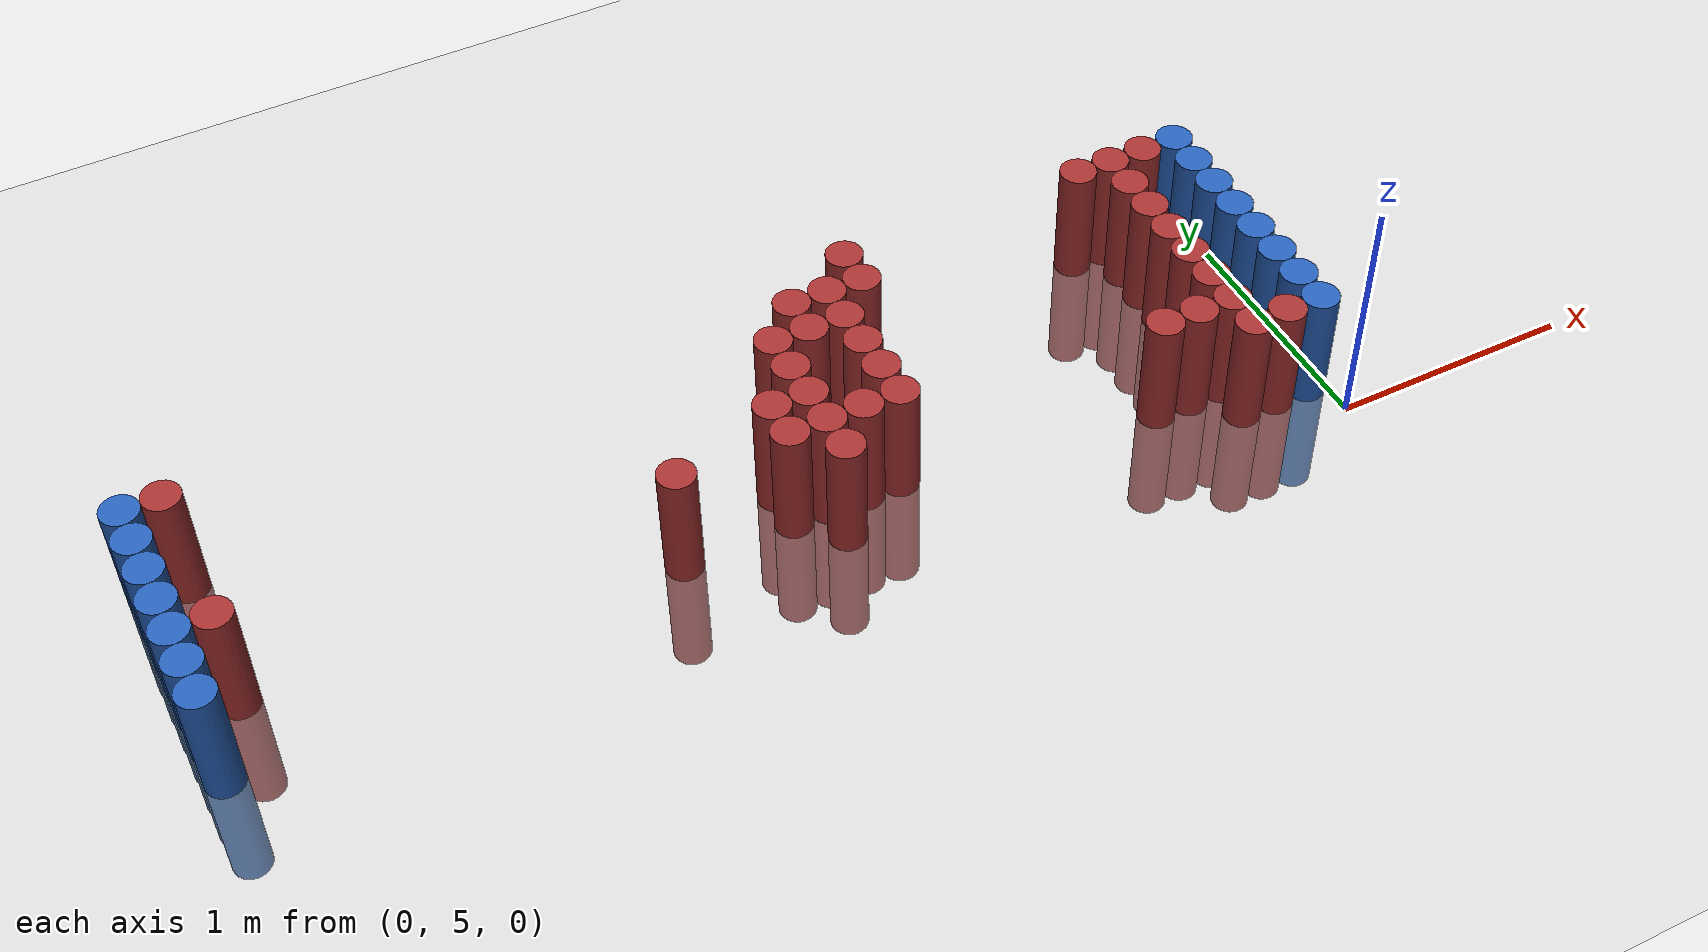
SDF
<sdf version="1.6">
 <world name="default">
  <model name="ground_plane">
   <static>1</static>
   <link name="link">
    <collision name="collision">
     <geometry><plane><normal>0 0 1</normal><size>100 100</size></plane></geometry>
     <surface><friction><ode><mu>100</mu><mu2>50</mu2></ode></friction></surface>
    </collision>
    <visual name="visual">
     <cast_shadows>0</cast_shadows>
     <geometry><plane><normal>0 0 1</normal><size>100 100</size></plane></geometry>
     <material>
      <script><uri>file://media/materials/scripts/gazebo.material</uri><name>Gazebo/Grey</name></script>
     </material>
    </visual>
   </link>
  </model>
  <model name="unit_cylinder_97">
   <static>1</static>
   <pose>-4.425000 5.325000 0.000000 0.000000 0.000000 0.000000</pose>
   <link name="link">
    <inertial>
     <mass>1</mass>
     <inertia><ixx>0.145833</ixx><ixy>0</ixy><ixz>0</ixz><iyy>0.145833</iyy><iyz>0</iyz><izz>0.125</izz></inertia>
    </inertial>
    <collision name="collision">
     <geometry><cylinder><radius>0.075000</radius><length>1</length></cylinder></geometry>
    </collision>
    <visual name="visual">
     <geometry><cylinder><radius>0.075000</radius><length>1</length></cylinder></geometry>
     <material>
      <ambient>0.152000 0.379000 0.720000 1</ambient>
      <diffuse>0.152000 0.379000 0.720000 1</diffuse>
     </material>
     <material>
      <script><name>Gazebo/Grey</name><uri>file://media/materials/scripts/gazebo.material</uri></script>
     </material>
    </visual>
   </link>
  </model>
  <model name="unit_cylinder_98">
   <static>1</static>
   <pose>-4.425000 5.475000 0.000000 0.000000 0.000000 0.000000</pose>
   <link name="link">
    <inertial>
     <mass>1</mass>
     <inertia><ixx>0.145833</ixx><ixy>0</ixy><ixz>0</ixz><iyy>0.145833</iyy><iyz>0</iyz><izz>0.125</izz></inertia>
    </inertial>
    <collision name="collision">
     <geometry><cylinder><radius>0.075000</radius><length>1</length></cylinder></geometry>
    </collision>
    <visual name="visual">
     <geometry><cylinder><radius>0.075000</radius><length>1</length></cylinder></geometry>
     <material>
      <ambient>0.152000 0.379000 0.720000 1</ambient>
      <diffuse>0.152000 0.379000 0.720000 1</diffuse>
     </material>
     <material>
      <script><name>Gazebo/Grey</name><uri>file://media/materials/scripts/gazebo.material</uri></script>
     </material>
    </visual>
   </link>
  </model>
  <model name="unit_cylinder_99">
   <static>1</static>
   <pose>-4.425000 5.625000 0.000000 0.000000 0.000000 0.000000</pose>
   <link name="link">
    <inertial>
     <mass>1</mass>
     <inertia><ixx>0.145833</ixx><ixy>0</ixy><ixz>0</ixz><iyy>0.145833</iyy><iyz>0</iyz><izz>0.125</izz></inertia>
    </inertial>
    <collision name="collision">
     <geometry><cylinder><radius>0.075000</radius><length>1</length></cylinder></geometry>
    </collision>
    <visual name="visual">
     <geometry><cylinder><radius>0.075000</radius><length>1</length></cylinder></geometry>
     <material>
      <ambient>0.152000 0.379000 0.720000 1</ambient>
      <diffuse>0.152000 0.379000 0.720000 1</diffuse>
     </material>
     <material>
      <script><name>Gazebo/Grey</name><uri>file://media/materials/scripts/gazebo.material</uri></script>
     </material>
    </visual>
   </link>
  </model>
  <model name="unit_cylinder_100">
   <static>1</static>
   <pose>-4.425000 5.775000 0.000000 0.000000 0.000000 0.000000</pose>
   <link name="link">
    <inertial>
     <mass>1</mass>
     <inertia><ixx>0.145833</ixx><ixy>0</ixy><ixz>0</ixz><iyy>0.145833</iyy><iyz>0</iyz><izz>0.125</izz></inertia>
    </inertial>
    <collision name="collision">
     <geometry><cylinder><radius>0.075000</radius><length>1</length></cylinder></geometry>
    </collision>
    <visual name="visual">
     <geometry><cylinder><radius>0.075000</radius><length>1</length></cylinder></geometry>
     <material>
      <ambient>0.152000 0.379000 0.720000 1</ambient>
      <diffuse>0.152000 0.379000 0.720000 1</diffuse>
     </material>
     <material>
      <script><name>Gazebo/Grey</name><uri>file://media/materials/scripts/gazebo.material</uri></script>
     </material>
    </visual>
   </link>
  </model>
  <model name="unit_cylinder_101">
   <static>1</static>
   <pose>-4.425000 5.925000 0.000000 0.000000 0.000000 0.000000</pose>
   <link name="link">
    <inertial>
     <mass>1</mass>
     <inertia><ixx>0.145833</ixx><ixy>0</ixy><ixz>0</ixz><iyy>0.145833</iyy><iyz>0</iyz><izz>0.125</izz></inertia>
    </inertial>
    <collision name="collision">
     <geometry><cylinder><radius>0.075000</radius><length>1</length></cylinder></geometry>
    </collision>
    <visual name="visual">
     <geometry><cylinder><radius>0.075000</radius><length>1</length></cylinder></geometry>
     <material>
      <ambient>0.152000 0.379000 0.720000 1</ambient>
      <diffuse>0.152000 0.379000 0.720000 1</diffuse>
     </material>
     <material>
      <script><name>Gazebo/Grey</name><uri>file://media/materials/scripts/gazebo.material</uri></script>
     </material>
    </visual>
   </link>
  </model>
  <model name="unit_cylinder_102">
   <static>1</static>
   <pose>-4.425000 6.075000 0.000000 0.000000 0.000000 0.000000</pose>
   <link name="link">
    <inertial>
     <mass>1</mass>
     <inertia><ixx>0.145833</ixx><ixy>0</ixy><ixz>0</ixz><iyy>0.145833</iyy><iyz>0</iyz><izz>0.125</izz></inertia>
    </inertial>
    <collision name="collision">
     <geometry><cylinder><radius>0.075000</radius><length>1</length></cylinder></geometry>
    </collision>
    <visual name="visual">
     <geometry><cylinder><radius>0.075000</radius><length>1</length></cylinder></geometry>
     <material>
      <ambient>0.152000 0.379000 0.720000 1</ambient>
      <diffuse>0.152000 0.379000 0.720000 1</diffuse>
     </material>
     <material>
      <script><name>Gazebo/Grey</name><uri>file://media/materials/scripts/gazebo.material</uri></script>
     </material>
    </visual>
   </link>
  </model>
  <model name="unit_cylinder_103">
   <static>1</static>
   <pose>-4.425000 6.225000 0.000000 0.000000 0.000000 0.000000</pose>
   <link name="link">
    <inertial>
     <mass>1</mass>
     <inertia><ixx>0.145833</ixx><ixy>0</ixy><ixz>0</ixz><iyy>0.145833</iyy><iyz>0</iyz><izz>0.125</izz></inertia>
    </inertial>
    <collision name="collision">
     <geometry><cylinder><radius>0.075000</radius><length>1</length></cylinder></geometry>
    </collision>
    <visual name="visual">
     <geometry><cylinder><radius>0.075000</radius><length>1</length></cylinder></geometry>
     <material>
      <ambient>0.152000 0.379000 0.720000 1</ambient>
      <diffuse>0.152000 0.379000 0.720000 1</diffuse>
     </material>
     <material>
      <script><name>Gazebo/Grey</name><uri>file://media/materials/scripts/gazebo.material</uri></script>
     </material>
    </visual>
   </link>
  </model>
  <model name="unit_cylinder_126">
   <static>1</static>
   <pose>-4.275000 5.625000 0.000000 0.000000 0.000000 0.000000</pose>
   <link name="link">
    <inertial>
     <mass>1</mass>
     <inertia><ixx>0.145833</ixx><ixy>0</ixy><ixz>0</ixz><iyy>0.145833</iyy><iyz>0</iyz><izz>0.125</izz></inertia>
    </inertial>
    <collision name="collision">
     <geometry><cylinder><radius>0.075000</radius><length>1</length></cylinder></geometry>
    </collision>
    <visual name="visual">
     <geometry><cylinder><radius>0.075000</radius><length>1</length></cylinder></geometry>
     <material>
      <ambient>0.648000 0.192000 0.192000 1</ambient>
      <diffuse>0.648000 0.192000 0.192000 1</diffuse>
     </material>
     <material>
      <script><name>Gazebo/Grey</name><uri>file://media/materials/scripts/gazebo.material</uri></script>
     </material>
    </visual>
   </link>
  </model>
  <model name="unit_cylinder_127">
   <static>1</static>
   <pose>-4.275000 6.225000 0.000000 0.000000 0.000000 0.000000</pose>
   <link name="link">
    <inertial>
     <mass>1</mass>
     <inertia><ixx>0.145833</ixx><ixy>0</ixy><ixz>0</ixz><iyy>0.145833</iyy><iyz>0</iyz><izz>0.125</izz></inertia>
    </inertial>
    <collision name="collision">
     <geometry><cylinder><radius>0.075000</radius><length>1</length></cylinder></geometry>
    </collision>
    <visual name="visual">
     <geometry><cylinder><radius>0.075000</radius><length>1</length></cylinder></geometry>
     <material>
      <ambient>0.648000 0.192000 0.192000 1</ambient>
      <diffuse>0.648000 0.192000 0.192000 1</diffuse>
     </material>
     <material>
      <script><name>Gazebo/Grey</name><uri>file://media/materials/scripts/gazebo.material</uri></script>
     </material>
    </visual>
   </link>
  </model>
  <model name="unit_cylinder_151">
   <static>1</static>
   <pose>-2.625000 5.475000 0.000000 0.000000 0.000000 0.000000</pose>
   <link name="link">
    <inertial>
     <mass>1</mass>
     <inertia><ixx>0.145833</ixx><ixy>0</ixy><ixz>0</ixz><iyy>0.145833</iyy><iyz>0</iyz><izz>0.125</izz></inertia>
    </inertial>
    <collision name="collision">
     <geometry><cylinder><radius>0.075000</radius><length>1</length></cylinder></geometry>
    </collision>
    <visual name="visual">
     <geometry><cylinder><radius>0.075000</radius><length>1</length></cylinder></geometry>
     <material>
      <ambient>0.648000 0.192000 0.192000 1</ambient>
      <diffuse>0.648000 0.192000 0.192000 1</diffuse>
     </material>
     <material>
      <script><name>Gazebo/Grey</name><uri>file://media/materials/scripts/gazebo.material</uri></script>
     </material>
    </visual>
   </link>
  </model>
  <model name="unit_cylinder_166">
   <static>1</static>
   <pose>-2.175000 5.475000 0.000000 0.000000 0.000000 0.000000</pose>
   <link name="link">
    <inertial>
     <mass>1</mass>
     <inertia><ixx>0.145833</ixx><ixy>0</ixy><ixz>0</ixz><iyy>0.145833</iyy><iyz>0</iyz><izz>0.125</izz></inertia>
    </inertial>
    <collision name="collision">
     <geometry><cylinder><radius>0.075000</radius><length>1</length></cylinder></geometry>
    </collision>
    <visual name="visual">
     <geometry><cylinder><radius>0.075000</radius><length>1</length></cylinder></geometry>
     <material>
      <ambient>0.648000 0.192000 0.192000 1</ambient>
      <diffuse>0.648000 0.192000 0.192000 1</diffuse>
     </material>
     <material>
      <script><name>Gazebo/Grey</name><uri>file://media/materials/scripts/gazebo.material</uri></script>
     </material>
    </visual>
   </link>
  </model>
  <model name="unit_cylinder_167">
   <static>1</static>
   <pose>-2.175000 5.625000 0.000000 0.000000 0.000000 0.000000</pose>
   <link name="link">
    <inertial>
     <mass>1</mass>
     <inertia><ixx>0.145833</ixx><ixy>0</ixy><ixz>0</ixz><iyy>0.145833</iyy><iyz>0</iyz><izz>0.125</izz></inertia>
    </inertial>
    <collision name="collision">
     <geometry><cylinder><radius>0.075000</radius><length>1</length></cylinder></geometry>
    </collision>
    <visual name="visual">
     <geometry><cylinder><radius>0.075000</radius><length>1</length></cylinder></geometry>
     <material>
      <ambient>0.648000 0.192000 0.192000 1</ambient>
      <diffuse>0.648000 0.192000 0.192000 1</diffuse>
     </material>
     <material>
      <script><name>Gazebo/Grey</name><uri>file://media/materials/scripts/gazebo.material</uri></script>
     </material>
    </visual>
   </link>
  </model>
  <model name="unit_cylinder_171">
   <static>1</static>
   <pose>-2.025000 5.325000 0.000000 0.000000 0.000000 0.000000</pose>
   <link name="link">
    <inertial>
     <mass>1</mass>
     <inertia><ixx>0.145833</ixx><ixy>0</ixy><ixz>0</ixz><iyy>0.145833</iyy><iyz>0</iyz><izz>0.125</izz></inertia>
    </inertial>
    <collision name="collision">
     <geometry><cylinder><radius>0.075000</radius><length>1</length></cylinder></geometry>
    </collision>
    <visual name="visual">
     <geometry><cylinder><radius>0.075000</radius><length>1</length></cylinder></geometry>
     <material>
      <ambient>0.648000 0.192000 0.192000 1</ambient>
      <diffuse>0.648000 0.192000 0.192000 1</diffuse>
     </material>
     <material>
      <script><name>Gazebo/Grey</name><uri>file://media/materials/scripts/gazebo.material</uri></script>
     </material>
    </visual>
   </link>
  </model>
  <model name="unit_cylinder_172">
   <static>1</static>
   <pose>-2.025000 5.475000 0.000000 0.000000 0.000000 0.000000</pose>
   <link name="link">
    <inertial>
     <mass>1</mass>
     <inertia><ixx>0.145833</ixx><ixy>0</ixy><ixz>0</ixz><iyy>0.145833</iyy><iyz>0</iyz><izz>0.125</izz></inertia>
    </inertial>
    <collision name="collision">
     <geometry><cylinder><radius>0.075000</radius><length>1</length></cylinder></geometry>
    </collision>
    <visual name="visual">
     <geometry><cylinder><radius>0.075000</radius><length>1</length></cylinder></geometry>
     <material>
      <ambient>0.648000 0.192000 0.192000 1</ambient>
      <diffuse>0.648000 0.192000 0.192000 1</diffuse>
     </material>
     <material>
      <script><name>Gazebo/Grey</name><uri>file://media/materials/scripts/gazebo.material</uri></script>
     </material>
    </visual>
   </link>
  </model>
  <model name="unit_cylinder_173">
   <static>1</static>
   <pose>-2.025000 5.625000 0.000000 0.000000 0.000000 0.000000</pose>
   <link name="link">
    <inertial>
     <mass>1</mass>
     <inertia><ixx>0.145833</ixx><ixy>0</ixy><ixz>0</ixz><iyy>0.145833</iyy><iyz>0</iyz><izz>0.125</izz></inertia>
    </inertial>
    <collision name="collision">
     <geometry><cylinder><radius>0.075000</radius><length>1</length></cylinder></geometry>
    </collision>
    <visual name="visual">
     <geometry><cylinder><radius>0.075000</radius><length>1</length></cylinder></geometry>
     <material>
      <ambient>0.648000 0.192000 0.192000 1</ambient>
      <diffuse>0.648000 0.192000 0.192000 1</diffuse>
     </material>
     <material>
      <script><name>Gazebo/Grey</name><uri>file://media/materials/scripts/gazebo.material</uri></script>
     </material>
    </visual>
   </link>
  </model>
  <model name="unit_cylinder_174">
   <static>1</static>
   <pose>-2.025000 5.775000 0.000000 0.000000 0.000000 0.000000</pose>
   <link name="link">
    <inertial>
     <mass>1</mass>
     <inertia><ixx>0.145833</ixx><ixy>0</ixy><ixz>0</ixz><iyy>0.145833</iyy><iyz>0</iyz><izz>0.125</izz></inertia>
    </inertial>
    <collision name="collision">
     <geometry><cylinder><radius>0.075000</radius><length>1</length></cylinder></geometry>
    </collision>
    <visual name="visual">
     <geometry><cylinder><radius>0.075000</radius><length>1</length></cylinder></geometry>
     <material>
      <ambient>0.648000 0.192000 0.192000 1</ambient>
      <diffuse>0.648000 0.192000 0.192000 1</diffuse>
     </material>
     <material>
      <script><name>Gazebo/Grey</name><uri>file://media/materials/scripts/gazebo.material</uri></script>
     </material>
    </visual>
   </link>
  </model>
  <model name="unit_cylinder_175">
   <static>1</static>
   <pose>-2.025000 5.925000 0.000000 0.000000 0.000000 0.000000</pose>
   <link name="link">
    <inertial>
     <mass>1</mass>
     <inertia><ixx>0.145833</ixx><ixy>0</ixy><ixz>0</ixz><iyy>0.145833</iyy><iyz>0</iyz><izz>0.125</izz></inertia>
    </inertial>
    <collision name="collision">
     <geometry><cylinder><radius>0.075000</radius><length>1</length></cylinder></geometry>
    </collision>
    <visual name="visual">
     <geometry><cylinder><radius>0.075000</radius><length>1</length></cylinder></geometry>
     <material>
      <ambient>0.648000 0.192000 0.192000 1</ambient>
      <diffuse>0.648000 0.192000 0.192000 1</diffuse>
     </material>
     <material>
      <script><name>Gazebo/Grey</name><uri>file://media/materials/scripts/gazebo.material</uri></script>
     </material>
    </visual>
   </link>
  </model>
  <model name="unit_cylinder_178">
   <static>1</static>
   <pose>-1.875000 5.475000 0.000000 0.000000 0.000000 0.000000</pose>
   <link name="link">
    <inertial>
     <mass>1</mass>
     <inertia><ixx>0.145833</ixx><ixy>0</ixy><ixz>0</ixz><iyy>0.145833</iyy><iyz>0</iyz><izz>0.125</izz></inertia>
    </inertial>
    <collision name="collision">
     <geometry><cylinder><radius>0.075000</radius><length>1</length></cylinder></geometry>
    </collision>
    <visual name="visual">
     <geometry><cylinder><radius>0.075000</radius><length>1</length></cylinder></geometry>
     <material>
      <ambient>0.648000 0.192000 0.192000 1</ambient>
      <diffuse>0.648000 0.192000 0.192000 1</diffuse>
     </material>
     <material>
      <script><name>Gazebo/Grey</name><uri>file://media/materials/scripts/gazebo.material</uri></script>
     </material>
    </visual>
   </link>
  </model>
  <model name="unit_cylinder_179">
   <static>1</static>
   <pose>-1.875000 5.925000 0.000000 0.000000 0.000000 0.000000</pose>
   <link name="link">
    <inertial>
     <mass>1</mass>
     <inertia><ixx>0.145833</ixx><ixy>0</ixy><ixz>0</ixz><iyy>0.145833</iyy><iyz>0</iyz><izz>0.125</izz></inertia>
    </inertial>
    <collision name="collision">
     <geometry><cylinder><radius>0.075000</radius><length>1</length></cylinder></geometry>
    </collision>
    <visual name="visual">
     <geometry><cylinder><radius>0.075000</radius><length>1</length></cylinder></geometry>
     <material>
      <ambient>0.648000 0.192000 0.192000 1</ambient>
      <diffuse>0.648000 0.192000 0.192000 1</diffuse>
     </material>
     <material>
      <script><name>Gazebo/Grey</name><uri>file://media/materials/scripts/gazebo.material</uri></script>
     </material>
    </visual>
   </link>
  </model>
  <model name="unit_cylinder_180">
   <static>1</static>
   <pose>-1.875000 6.075000 0.000000 0.000000 0.000000 0.000000</pose>
   <link name="link">
    <inertial>
     <mass>1</mass>
     <inertia><ixx>0.145833</ixx><ixy>0</ixy><ixz>0</ixz><iyy>0.145833</iyy><iyz>0</iyz><izz>0.125</izz></inertia>
    </inertial>
    <collision name="collision">
     <geometry><cylinder><radius>0.075000</radius><length>1</length></cylinder></geometry>
    </collision>
    <visual name="visual">
     <geometry><cylinder><radius>0.075000</radius><length>1</length></cylinder></geometry>
     <material>
      <ambient>0.648000 0.192000 0.192000 1</ambient>
      <diffuse>0.648000 0.192000 0.192000 1</diffuse>
     </material>
     <material>
      <script><name>Gazebo/Grey</name><uri>file://media/materials/scripts/gazebo.material</uri></script>
     </material>
    </visual>
   </link>
  </model>
  <model name="unit_cylinder_184">
   <static>1</static>
   <pose>-1.725000 5.475000 0.000000 0.000000 0.000000 0.000000</pose>
   <link name="link">
    <inertial>
     <mass>1</mass>
     <inertia><ixx>0.145833</ixx><ixy>0</ixy><ixz>0</ixz><iyy>0.145833</iyy><iyz>0</iyz><izz>0.125</izz></inertia>
    </inertial>
    <collision name="collision">
     <geometry><cylinder><radius>0.075000</radius><length>1</length></cylinder></geometry>
    </collision>
    <visual name="visual">
     <geometry><cylinder><radius>0.075000</radius><length>1</length></cylinder></geometry>
     <material>
      <ambient>0.648000 0.192000 0.192000 1</ambient>
      <diffuse>0.648000 0.192000 0.192000 1</diffuse>
     </material>
     <material>
      <script><name>Gazebo/Grey</name><uri>file://media/materials/scripts/gazebo.material</uri></script>
     </material>
    </visual>
   </link>
  </model>
  <model name="unit_cylinder_185">
   <static>1</static>
   <pose>-1.725000 5.625000 0.000000 0.000000 0.000000 0.000000</pose>
   <link name="link">
    <inertial>
     <mass>1</mass>
     <inertia><ixx>0.145833</ixx><ixy>0</ixy><ixz>0</ixz><iyy>0.145833</iyy><iyz>0</iyz><izz>0.125</izz></inertia>
    </inertial>
    <collision name="collision">
     <geometry><cylinder><radius>0.075000</radius><length>1</length></cylinder></geometry>
    </collision>
    <visual name="visual">
     <geometry><cylinder><radius>0.075000</radius><length>1</length></cylinder></geometry>
     <material>
      <ambient>0.648000 0.192000 0.192000 1</ambient>
      <diffuse>0.648000 0.192000 0.192000 1</diffuse>
     </material>
     <material>
      <script><name>Gazebo/Grey</name><uri>file://media/materials/scripts/gazebo.material</uri></script>
     </material>
    </visual>
   </link>
  </model>
  <model name="unit_cylinder_186">
   <static>1</static>
   <pose>-1.725000 5.775000 0.000000 0.000000 0.000000 0.000000</pose>
   <link name="link">
    <inertial>
     <mass>1</mass>
     <inertia><ixx>0.145833</ixx><ixy>0</ixy><ixz>0</ixz><iyy>0.145833</iyy><iyz>0</iyz><izz>0.125</izz></inertia>
    </inertial>
    <collision name="collision">
     <geometry><cylinder><radius>0.075000</radius><length>1</length></cylinder></geometry>
    </collision>
    <visual name="visual">
     <geometry><cylinder><radius>0.075000</radius><length>1</length></cylinder></geometry>
     <material>
      <ambient>0.648000 0.192000 0.192000 1</ambient>
      <diffuse>0.648000 0.192000 0.192000 1</diffuse>
     </material>
     <material>
      <script><name>Gazebo/Grey</name><uri>file://media/materials/scripts/gazebo.material</uri></script>
     </material>
    </visual>
   </link>
  </model>
  <model name="unit_cylinder_187">
   <static>1</static>
   <pose>-1.725000 5.925000 0.000000 0.000000 0.000000 0.000000</pose>
   <link name="link">
    <inertial>
     <mass>1</mass>
     <inertia><ixx>0.145833</ixx><ixy>0</ixy><ixz>0</ixz><iyy>0.145833</iyy><iyz>0</iyz><izz>0.125</izz></inertia>
    </inertial>
    <collision name="collision">
     <geometry><cylinder><radius>0.075000</radius><length>1</length></cylinder></geometry>
    </collision>
    <visual name="visual">
     <geometry><cylinder><radius>0.075000</radius><length>1</length></cylinder></geometry>
     <material>
      <ambient>0.648000 0.192000 0.192000 1</ambient>
      <diffuse>0.648000 0.192000 0.192000 1</diffuse>
     </material>
     <material>
      <script><name>Gazebo/Grey</name><uri>file://media/materials/scripts/gazebo.material</uri></script>
     </material>
    </visual>
   </link>
  </model>
  <model name="unit_cylinder_188">
   <static>1</static>
   <pose>-1.725000 6.075000 0.000000 0.000000 0.000000 0.000000</pose>
   <link name="link">
    <inertial>
     <mass>1</mass>
     <inertia><ixx>0.145833</ixx><ixy>0</ixy><ixz>0</ixz><iyy>0.145833</iyy><iyz>0</iyz><izz>0.125</izz></inertia>
    </inertial>
    <collision name="collision">
     <geometry><cylinder><radius>0.075000</radius><length>1</length></cylinder></geometry>
    </collision>
    <visual name="visual">
     <geometry><cylinder><radius>0.075000</radius><length>1</length></cylinder></geometry>
     <material>
      <ambient>0.648000 0.192000 0.192000 1</ambient>
      <diffuse>0.648000 0.192000 0.192000 1</diffuse>
     </material>
     <material>
      <script><name>Gazebo/Grey</name><uri>file://media/materials/scripts/gazebo.material</uri></script>
     </material>
    </visual>
   </link>
  </model>
  <model name="unit_cylinder_191">
   <static>1</static>
   <pose>-1.575000 6.075000 0.000000 0.000000 0.000000 0.000000</pose>
   <link name="link">
    <inertial>
     <mass>1</mass>
     <inertia><ixx>0.145833</ixx><ixy>0</ixy><ixz>0</ixz><iyy>0.145833</iyy><iyz>0</iyz><izz>0.125</izz></inertia>
    </inertial>
    <collision name="collision">
     <geometry><cylinder><radius>0.075000</radius><length>1</length></cylinder></geometry>
    </collision>
    <visual name="visual">
     <geometry><cylinder><radius>0.075000</radius><length>1</length></cylinder></geometry>
     <material>
      <ambient>0.648000 0.192000 0.192000 1</ambient>
      <diffuse>0.648000 0.192000 0.192000 1</diffuse>
     </material>
     <material>
      <script><name>Gazebo/Grey</name><uri>file://media/materials/scripts/gazebo.material</uri></script>
     </material>
    </visual>
   </link>
  </model>
  <model name="unit_cylinder_192">
   <static>1</static>
   <pose>-1.575000 6.225000 0.000000 0.000000 0.000000 0.000000</pose>
   <link name="link">
    <inertial>
     <mass>1</mass>
     <inertia><ixx>0.145833</ixx><ixy>0</ixy><ixz>0</ixz><iyy>0.145833</iyy><iyz>0</iyz><izz>0.125</izz></inertia>
    </inertial>
    <collision name="collision">
     <geometry><cylinder><radius>0.075000</radius><length>1</length></cylinder></geometry>
    </collision>
    <visual name="visual">
     <geometry><cylinder><radius>0.075000</radius><length>1</length></cylinder></geometry>
     <material>
      <ambient>0.648000 0.192000 0.192000 1</ambient>
      <diffuse>0.648000 0.192000 0.192000 1</diffuse>
     </material>
     <material>
      <script><name>Gazebo/Grey</name><uri>file://media/materials/scripts/gazebo.material</uri></script>
     </material>
    </visual>
   </link>
  </model>
  <model name="unit_cylinder_223">
   <static>1</static>
   <pose>-0.675000 5.325000 0.000000 0.000000 0.000000 0.000000</pose>
   <link name="link">
    <inertial>
     <mass>1</mass>
     <inertia><ixx>0.145833</ixx><ixy>0</ixy><ixz>0</ixz><iyy>0.145833</iyy><iyz>0</iyz><izz>0.125</izz></inertia>
    </inertial>
    <collision name="collision">
     <geometry><cylinder><radius>0.075000</radius><length>1</length></cylinder></geometry>
    </collision>
    <visual name="visual">
     <geometry><cylinder><radius>0.075000</radius><length>1</length></cylinder></geometry>
     <material>
      <ambient>0.648000 0.192000 0.192000 1</ambient>
      <diffuse>0.648000 0.192000 0.192000 1</diffuse>
     </material>
     <material>
      <script><name>Gazebo/Grey</name><uri>file://media/materials/scripts/gazebo.material</uri></script>
     </material>
    </visual>
   </link>
  </model>
  <model name="unit_cylinder_231">
   <static>1</static>
   <pose>-0.525000 5.325000 0.000000 0.000000 0.000000 0.000000</pose>
   <link name="link">
    <inertial>
     <mass>1</mass>
     <inertia><ixx>0.145833</ixx><ixy>0</ixy><ixz>0</ixz><iyy>0.145833</iyy><iyz>0</iyz><izz>0.125</izz></inertia>
    </inertial>
    <collision name="collision">
     <geometry><cylinder><radius>0.075000</radius><length>1</length></cylinder></geometry>
    </collision>
    <visual name="visual">
     <geometry><cylinder><radius>0.075000</radius><length>1</length></cylinder></geometry>
     <material>
      <ambient>0.648000 0.192000 0.192000 1</ambient>
      <diffuse>0.648000 0.192000 0.192000 1</diffuse>
     </material>
     <material>
      <script><name>Gazebo/Grey</name><uri>file://media/materials/scripts/gazebo.material</uri></script>
     </material>
    </visual>
   </link>
  </model>
  <model name="unit_cylinder_232">
   <static>1</static>
   <pose>-0.525000 6.225000 0.000000 0.000000 0.000000 0.000000</pose>
   <link name="link">
    <inertial>
     <mass>1</mass>
     <inertia><ixx>0.145833</ixx><ixy>0</ixy><ixz>0</ixz><iyy>0.145833</iyy><iyz>0</iyz><izz>0.125</izz></inertia>
    </inertial>
    <collision name="collision">
     <geometry><cylinder><radius>0.075000</radius><length>1</length></cylinder></geometry>
    </collision>
    <visual name="visual">
     <geometry><cylinder><radius>0.075000</radius><length>1</length></cylinder></geometry>
     <material>
      <ambient>0.648000 0.192000 0.192000 1</ambient>
      <diffuse>0.648000 0.192000 0.192000 1</diffuse>
     </material>
     <material>
      <script><name>Gazebo/Grey</name><uri>file://media/materials/scripts/gazebo.material</uri></script>
     </material>
    </visual>
   </link>
  </model>
  <model name="unit_cylinder_237">
   <static>1</static>
   <pose>-0.375000 5.175000 0.000000 0.000000 0.000000 0.000000</pose>
   <link name="link">
    <inertial>
     <mass>1</mass>
     <inertia><ixx>0.145833</ixx><ixy>0</ixy><ixz>0</ixz><iyy>0.145833</iyy><iyz>0</iyz><izz>0.125</izz></inertia>
    </inertial>
    <collision name="collision">
     <geometry><cylinder><radius>0.075000</radius><length>1</length></cylinder></geometry>
    </collision>
    <visual name="visual">
     <geometry><cylinder><radius>0.075000</radius><length>1</length></cylinder></geometry>
     <material>
      <ambient>0.648000 0.192000 0.192000 1</ambient>
      <diffuse>0.648000 0.192000 0.192000 1</diffuse>
     </material>
     <material>
      <script><name>Gazebo/Grey</name><uri>file://media/materials/scripts/gazebo.material</uri></script>
     </material>
    </visual>
   </link>
  </model>
  <model name="unit_cylinder_238">
   <static>1</static>
   <pose>-0.375000 5.325000 0.000000 0.000000 0.000000 0.000000</pose>
   <link name="link">
    <inertial>
     <mass>1</mass>
     <inertia><ixx>0.145833</ixx><ixy>0</ixy><ixz>0</ixz><iyy>0.145833</iyy><iyz>0</iyz><izz>0.125</izz></inertia>
    </inertial>
    <collision name="collision">
     <geometry><cylinder><radius>0.075000</radius><length>1</length></cylinder></geometry>
    </collision>
    <visual name="visual">
     <geometry><cylinder><radius>0.075000</radius><length>1</length></cylinder></geometry>
     <material>
      <ambient>0.648000 0.192000 0.192000 1</ambient>
      <diffuse>0.648000 0.192000 0.192000 1</diffuse>
     </material>
     <material>
      <script><name>Gazebo/Grey</name><uri>file://media/materials/scripts/gazebo.material</uri></script>
     </material>
    </visual>
   </link>
  </model>
  <model name="unit_cylinder_239">
   <static>1</static>
   <pose>-0.375000 5.475000 0.000000 0.000000 0.000000 0.000000</pose>
   <link name="link">
    <inertial>
     <mass>1</mass>
     <inertia><ixx>0.145833</ixx><ixy>0</ixy><ixz>0</ixz><iyy>0.145833</iyy><iyz>0</iyz><izz>0.125</izz></inertia>
    </inertial>
    <collision name="collision">
     <geometry><cylinder><radius>0.075000</radius><length>1</length></cylinder></geometry>
    </collision>
    <visual name="visual">
     <geometry><cylinder><radius>0.075000</radius><length>1</length></cylinder></geometry>
     <material>
      <ambient>0.648000 0.192000 0.192000 1</ambient>
      <diffuse>0.648000 0.192000 0.192000 1</diffuse>
     </material>
     <material>
      <script><name>Gazebo/Grey</name><uri>file://media/materials/scripts/gazebo.material</uri></script>
     </material>
    </visual>
   </link>
  </model>
  <model name="unit_cylinder_240">
   <static>1</static>
   <pose>-0.375000 5.625000 0.000000 0.000000 0.000000 0.000000</pose>
   <link name="link">
    <inertial>
     <mass>1</mass>
     <inertia><ixx>0.145833</ixx><ixy>0</ixy><ixz>0</ixz><iyy>0.145833</iyy><iyz>0</iyz><izz>0.125</izz></inertia>
    </inertial>
    <collision name="collision">
     <geometry><cylinder><radius>0.075000</radius><length>1</length></cylinder></geometry>
    </collision>
    <visual name="visual">
     <geometry><cylinder><radius>0.075000</radius><length>1</length></cylinder></geometry>
     <material>
      <ambient>0.648000 0.192000 0.192000 1</ambient>
      <diffuse>0.648000 0.192000 0.192000 1</diffuse>
     </material>
     <material>
      <script><name>Gazebo/Grey</name><uri>file://media/materials/scripts/gazebo.material</uri></script>
     </material>
    </visual>
   </link>
  </model>
  <model name="unit_cylinder_241">
   <static>1</static>
   <pose>-0.375000 5.775000 0.000000 0.000000 0.000000 0.000000</pose>
   <link name="link">
    <inertial>
     <mass>1</mass>
     <inertia><ixx>0.145833</ixx><ixy>0</ixy><ixz>0</ixz><iyy>0.145833</iyy><iyz>0</iyz><izz>0.125</izz></inertia>
    </inertial>
    <collision name="collision">
     <geometry><cylinder><radius>0.075000</radius><length>1</length></cylinder></geometry>
    </collision>
    <visual name="visual">
     <geometry><cylinder><radius>0.075000</radius><length>1</length></cylinder></geometry>
     <material>
      <ambient>0.648000 0.192000 0.192000 1</ambient>
      <diffuse>0.648000 0.192000 0.192000 1</diffuse>
     </material>
     <material>
      <script><name>Gazebo/Grey</name><uri>file://media/materials/scripts/gazebo.material</uri></script>
     </material>
    </visual>
   </link>
  </model>
  <model name="unit_cylinder_242">
   <static>1</static>
   <pose>-0.375000 5.925000 0.000000 0.000000 0.000000 0.000000</pose>
   <link name="link">
    <inertial>
     <mass>1</mass>
     <inertia><ixx>0.145833</ixx><ixy>0</ixy><ixz>0</ixz><iyy>0.145833</iyy><iyz>0</iyz><izz>0.125</izz></inertia>
    </inertial>
    <collision name="collision">
     <geometry><cylinder><radius>0.075000</radius><length>1</length></cylinder></geometry>
    </collision>
    <visual name="visual">
     <geometry><cylinder><radius>0.075000</radius><length>1</length></cylinder></geometry>
     <material>
      <ambient>0.648000 0.192000 0.192000 1</ambient>
      <diffuse>0.648000 0.192000 0.192000 1</diffuse>
     </material>
     <material>
      <script><name>Gazebo/Grey</name><uri>file://media/materials/scripts/gazebo.material</uri></script>
     </material>
    </visual>
   </link>
  </model>
  <model name="unit_cylinder_243">
   <static>1</static>
   <pose>-0.375000 6.075000 0.000000 0.000000 0.000000 0.000000</pose>
   <link name="link">
    <inertial>
     <mass>1</mass>
     <inertia><ixx>0.145833</ixx><ixy>0</ixy><ixz>0</ixz><iyy>0.145833</iyy><iyz>0</iyz><izz>0.125</izz></inertia>
    </inertial>
    <collision name="collision">
     <geometry><cylinder><radius>0.075000</radius><length>1</length></cylinder></geometry>
    </collision>
    <visual name="visual">
     <geometry><cylinder><radius>0.075000</radius><length>1</length></cylinder></geometry>
     <material>
      <ambient>0.648000 0.192000 0.192000 1</ambient>
      <diffuse>0.648000 0.192000 0.192000 1</diffuse>
     </material>
     <material>
      <script><name>Gazebo/Grey</name><uri>file://media/materials/scripts/gazebo.material</uri></script>
     </material>
    </visual>
   </link>
  </model>
  <model name="unit_cylinder_244">
   <static>1</static>
   <pose>-0.375000 6.225000 0.000000 0.000000 0.000000 0.000000</pose>
   <link name="link">
    <inertial>
     <mass>1</mass>
     <inertia><ixx>0.145833</ixx><ixy>0</ixy><ixz>0</ixz><iyy>0.145833</iyy><iyz>0</iyz><izz>0.125</izz></inertia>
    </inertial>
    <collision name="collision">
     <geometry><cylinder><radius>0.075000</radius><length>1</length></cylinder></geometry>
    </collision>
    <visual name="visual">
     <geometry><cylinder><radius>0.075000</radius><length>1</length></cylinder></geometry>
     <material>
      <ambient>0.648000 0.192000 0.192000 1</ambient>
      <diffuse>0.648000 0.192000 0.192000 1</diffuse>
     </material>
     <material>
      <script><name>Gazebo/Grey</name><uri>file://media/materials/scripts/gazebo.material</uri></script>
     </material>
    </visual>
   </link>
  </model>
  <model name="unit_cylinder_248">
   <static>1</static>
   <pose>-0.225000 5.175000 0.000000 0.000000 0.000000 0.000000</pose>
   <link name="link">
    <inertial>
     <mass>1</mass>
     <inertia><ixx>0.145833</ixx><ixy>0</ixy><ixz>0</ixz><iyy>0.145833</iyy><iyz>0</iyz><izz>0.125</izz></inertia>
    </inertial>
    <collision name="collision">
     <geometry><cylinder><radius>0.075000</radius><length>1</length></cylinder></geometry>
    </collision>
    <visual name="visual">
     <geometry><cylinder><radius>0.075000</radius><length>1</length></cylinder></geometry>
     <material>
      <ambient>0.648000 0.192000 0.192000 1</ambient>
      <diffuse>0.648000 0.192000 0.192000 1</diffuse>
     </material>
     <material>
      <script><name>Gazebo/Grey</name><uri>file://media/materials/scripts/gazebo.material</uri></script>
     </material>
    </visual>
   </link>
  </model>
  <model name="unit_cylinder_249">
   <static>1</static>
   <pose>-0.225000 6.225000 0.000000 0.000000 0.000000 0.000000</pose>
   <link name="link">
    <inertial>
     <mass>1</mass>
     <inertia><ixx>0.145833</ixx><ixy>0</ixy><ixz>0</ixz><iyy>0.145833</iyy><iyz>0</iyz><izz>0.125</izz></inertia>
    </inertial>
    <collision name="collision">
     <geometry><cylinder><radius>0.075000</radius><length>1</length></cylinder></geometry>
    </collision>
    <visual name="visual">
     <geometry><cylinder><radius>0.075000</radius><length>1</length></cylinder></geometry>
     <material>
      <ambient>0.648000 0.192000 0.192000 1</ambient>
      <diffuse>0.648000 0.192000 0.192000 1</diffuse>
     </material>
     <material>
      <script><name>Gazebo/Grey</name><uri>file://media/materials/scripts/gazebo.material</uri></script>
     </material>
    </visual>
   </link>
  </model>
  <model name="unit_cylinder_261">
   <static>1</static>
   <pose>-0.075000 5.175000 0.000000 0.000000 0.000000 0.000000</pose>
   <link name="link">
    <inertial>
     <mass>1</mass>
     <inertia><ixx>0.145833</ixx><ixy>0</ixy><ixz>0</ixz><iyy>0.145833</iyy><iyz>0</iyz><izz>0.125</izz></inertia>
    </inertial>
    <collision name="collision">
     <geometry><cylinder><radius>0.075000</radius><length>1</length></cylinder></geometry>
    </collision>
    <visual name="visual">
     <geometry><cylinder><radius>0.075000</radius><length>1</length></cylinder></geometry>
     <material>
      <ambient>0.152000 0.379000 0.720000 1</ambient>
      <diffuse>0.152000 0.379000 0.720000 1</diffuse>
     </material>
     <material>
      <script><name>Gazebo/Grey</name><uri>file://media/materials/scripts/gazebo.material</uri></script>
     </material>
    </visual>
   </link>
  </model>
  <model name="unit_cylinder_262">
   <static>1</static>
   <pose>-0.075000 5.325000 0.000000 0.000000 0.000000 0.000000</pose>
   <link name="link">
    <inertial>
     <mass>1</mass>
     <inertia><ixx>0.145833</ixx><ixy>0</ixy><ixz>0</ixz><iyy>0.145833</iyy><iyz>0</iyz><izz>0.125</izz></inertia>
    </inertial>
    <collision name="collision">
     <geometry><cylinder><radius>0.075000</radius><length>1</length></cylinder></geometry>
    </collision>
    <visual name="visual">
     <geometry><cylinder><radius>0.075000</radius><length>1</length></cylinder></geometry>
     <material>
      <ambient>0.152000 0.379000 0.720000 1</ambient>
      <diffuse>0.152000 0.379000 0.720000 1</diffuse>
     </material>
     <material>
      <script><name>Gazebo/Grey</name><uri>file://media/materials/scripts/gazebo.material</uri></script>
     </material>
    </visual>
   </link>
  </model>
  <model name="unit_cylinder_263">
   <static>1</static>
   <pose>-0.075000 5.475000 0.000000 0.000000 0.000000 0.000000</pose>
   <link name="link">
    <inertial>
     <mass>1</mass>
     <inertia><ixx>0.145833</ixx><ixy>0</ixy><ixz>0</ixz><iyy>0.145833</iyy><iyz>0</iyz><izz>0.125</izz></inertia>
    </inertial>
    <collision name="collision">
     <geometry><cylinder><radius>0.075000</radius><length>1</length></cylinder></geometry>
    </collision>
    <visual name="visual">
     <geometry><cylinder><radius>0.075000</radius><length>1</length></cylinder></geometry>
     <material>
      <ambient>0.152000 0.379000 0.720000 1</ambient>
      <diffuse>0.152000 0.379000 0.720000 1</diffuse>
     </material>
     <material>
      <script><name>Gazebo/Grey</name><uri>file://media/materials/scripts/gazebo.material</uri></script>
     </material>
    </visual>
   </link>
  </model>
  <model name="unit_cylinder_264">
   <static>1</static>
   <pose>-0.075000 5.625000 0.000000 0.000000 0.000000 0.000000</pose>
   <link name="link">
    <inertial>
     <mass>1</mass>
     <inertia><ixx>0.145833</ixx><ixy>0</ixy><ixz>0</ixz><iyy>0.145833</iyy><iyz>0</iyz><izz>0.125</izz></inertia>
    </inertial>
    <collision name="collision">
     <geometry><cylinder><radius>0.075000</radius><length>1</length></cylinder></geometry>
    </collision>
    <visual name="visual">
     <geometry><cylinder><radius>0.075000</radius><length>1</length></cylinder></geometry>
     <material>
      <ambient>0.152000 0.379000 0.720000 1</ambient>
      <diffuse>0.152000 0.379000 0.720000 1</diffuse>
     </material>
     <material>
      <script><name>Gazebo/Grey</name><uri>file://media/materials/scripts/gazebo.material</uri></script>
     </material>
    </visual>
   </link>
  </model>
  <model name="unit_cylinder_265">
   <static>1</static>
   <pose>-0.075000 5.775000 0.000000 0.000000 0.000000 0.000000</pose>
   <link name="link">
    <inertial>
     <mass>1</mass>
     <inertia><ixx>0.145833</ixx><ixy>0</ixy><ixz>0</ixz><iyy>0.145833</iyy><iyz>0</iyz><izz>0.125</izz></inertia>
    </inertial>
    <collision name="collision">
     <geometry><cylinder><radius>0.075000</radius><length>1</length></cylinder></geometry>
    </collision>
    <visual name="visual">
     <geometry><cylinder><radius>0.075000</radius><length>1</length></cylinder></geometry>
     <material>
      <ambient>0.152000 0.379000 0.720000 1</ambient>
      <diffuse>0.152000 0.379000 0.720000 1</diffuse>
     </material>
     <material>
      <script><name>Gazebo/Grey</name><uri>file://media/materials/scripts/gazebo.material</uri></script>
     </material>
    </visual>
   </link>
  </model>
  <model name="unit_cylinder_266">
   <static>1</static>
   <pose>-0.075000 5.925000 0.000000 0.000000 0.000000 0.000000</pose>
   <link name="link">
    <inertial>
     <mass>1</mass>
     <inertia><ixx>0.145833</ixx><ixy>0</ixy><ixz>0</ixz><iyy>0.145833</iyy><iyz>0</iyz><izz>0.125</izz></inertia>
    </inertial>
    <collision name="collision">
     <geometry><cylinder><radius>0.075000</radius><length>1</length></cylinder></geometry>
    </collision>
    <visual name="visual">
     <geometry><cylinder><radius>0.075000</radius><length>1</length></cylinder></geometry>
     <material>
      <ambient>0.152000 0.379000 0.720000 1</ambient>
      <diffuse>0.152000 0.379000 0.720000 1</diffuse>
     </material>
     <material>
      <script><name>Gazebo/Grey</name><uri>file://media/materials/scripts/gazebo.material</uri></script>
     </material>
    </visual>
   </link>
  </model>
  <model name="unit_cylinder_267">
   <static>1</static>
   <pose>-0.075000 6.075000 0.000000 0.000000 0.000000 0.000000</pose>
   <link name="link">
    <inertial>
     <mass>1</mass>
     <inertia><ixx>0.145833</ixx><ixy>0</ixy><ixz>0</ixz><iyy>0.145833</iyy><iyz>0</iyz><izz>0.125</izz></inertia>
    </inertial>
    <collision name="collision">
     <geometry><cylinder><radius>0.075000</radius><length>1</length></cylinder></geometry>
    </collision>
    <visual name="visual">
     <geometry><cylinder><radius>0.075000</radius><length>1</length></cylinder></geometry>
     <material>
      <ambient>0.152000 0.379000 0.720000 1</ambient>
      <diffuse>0.152000 0.379000 0.720000 1</diffuse>
     </material>
     <material>
      <script><name>Gazebo/Grey</name><uri>file://media/materials/scripts/gazebo.material</uri></script>
     </material>
    </visual>
   </link>
  </model>
  <model name="unit_cylinder_268">
   <static>1</static>
   <pose>-0.075000 6.225000 0.000000 0.000000 0.000000 0.000000</pose>
   <link name="link">
    <inertial>
     <mass>1</mass>
     <inertia><ixx>0.145833</ixx><ixy>0</ixy><ixz>0</ixz><iyy>0.145833</iyy><iyz>0</iyz><izz>0.125</izz></inertia>
    </inertial>
    <collision name="collision">
     <geometry><cylinder><radius>0.075000</radius><length>1</length></cylinder></geometry>
    </collision>
    <visual name="visual">
     <geometry><cylinder><radius>0.075000</radius><length>1</length></cylinder></geometry>
     <material>
      <ambient>0.152000 0.379000 0.720000 1</ambient>
      <diffuse>0.152000 0.379000 0.720000 1</diffuse>
     </material>
     <material>
      <script><name>Gazebo/Grey</name><uri>file://media/materials/scripts/gazebo.material</uri></script>
     </material>
    </visual>
   </link>
  </model>
 </world>
</sdf>
